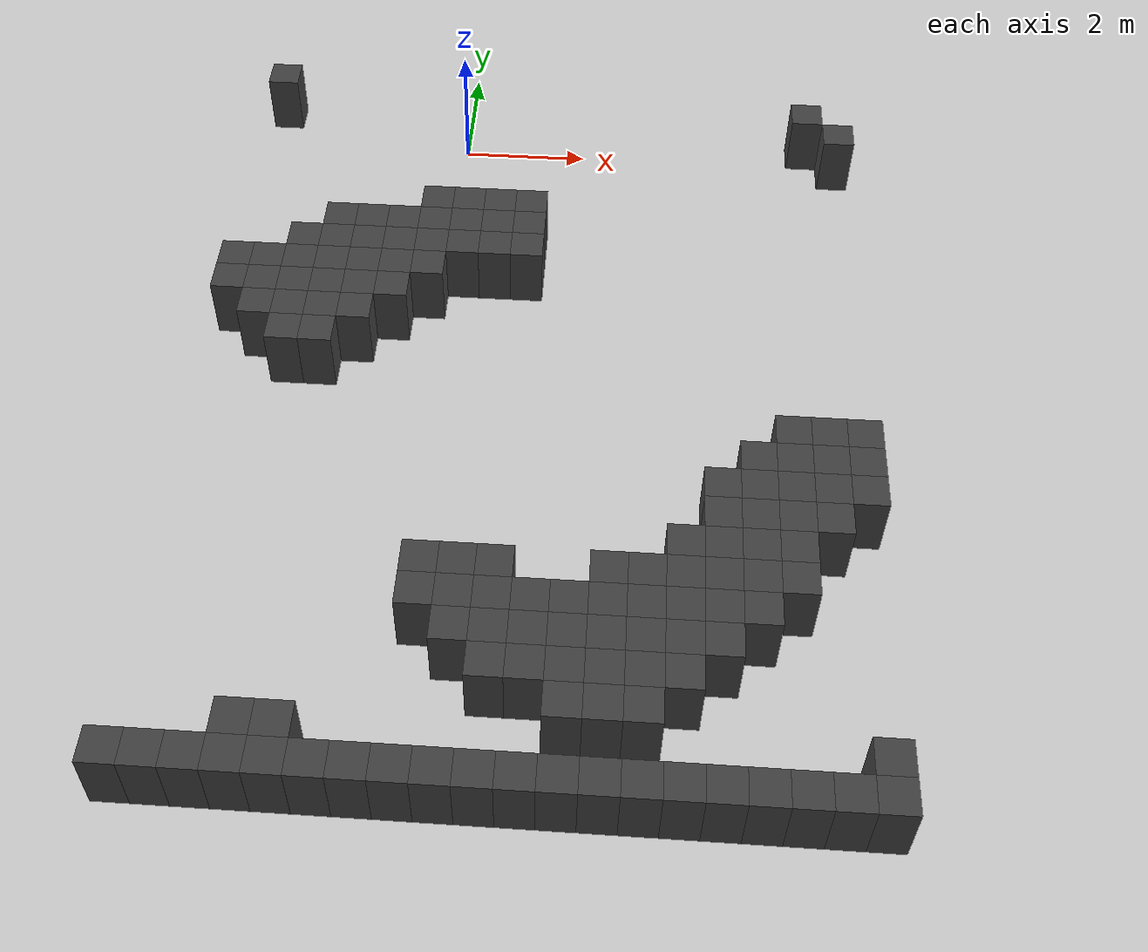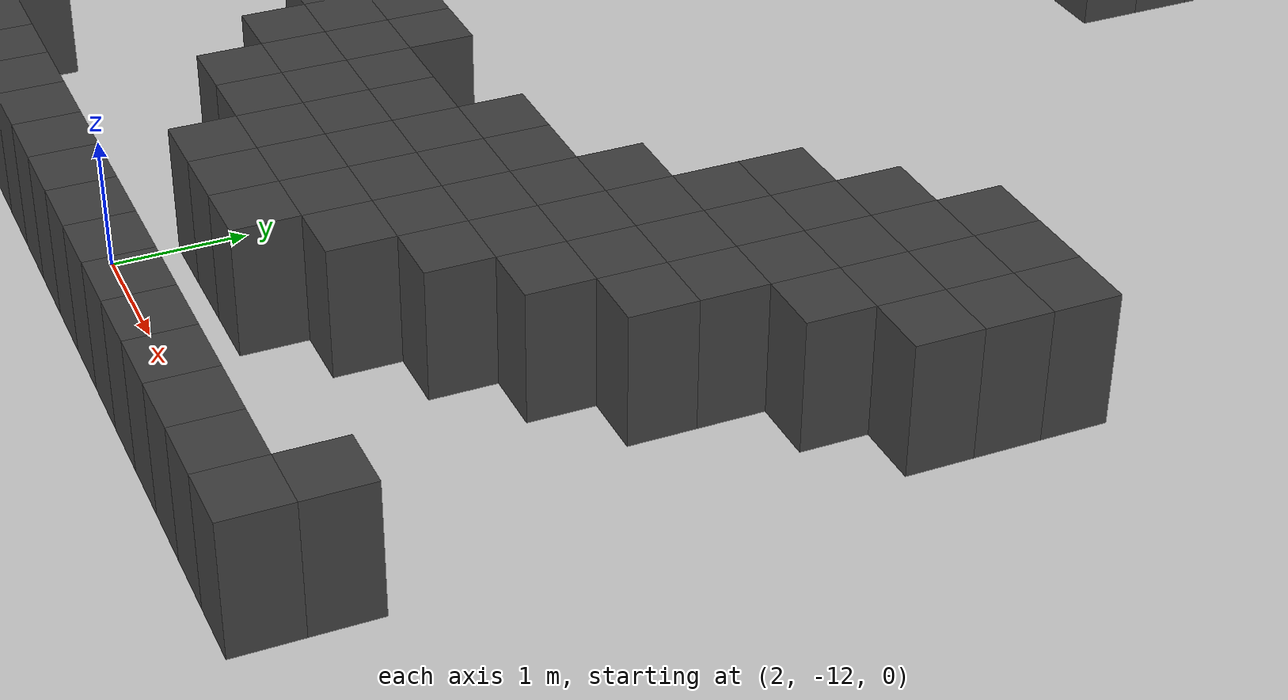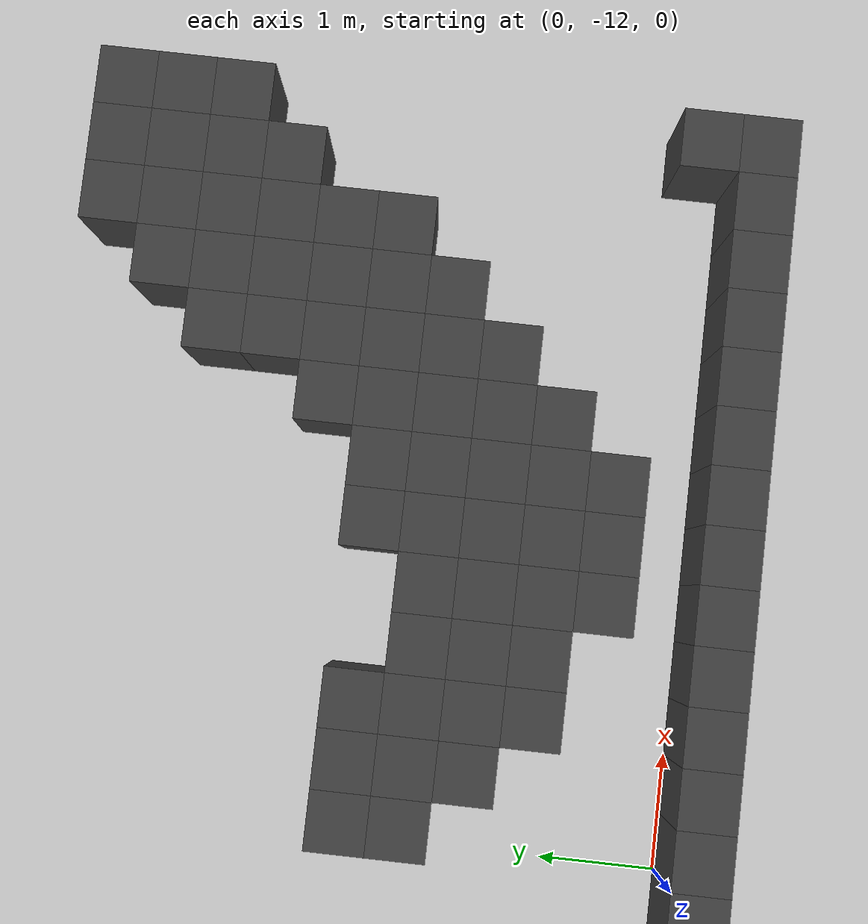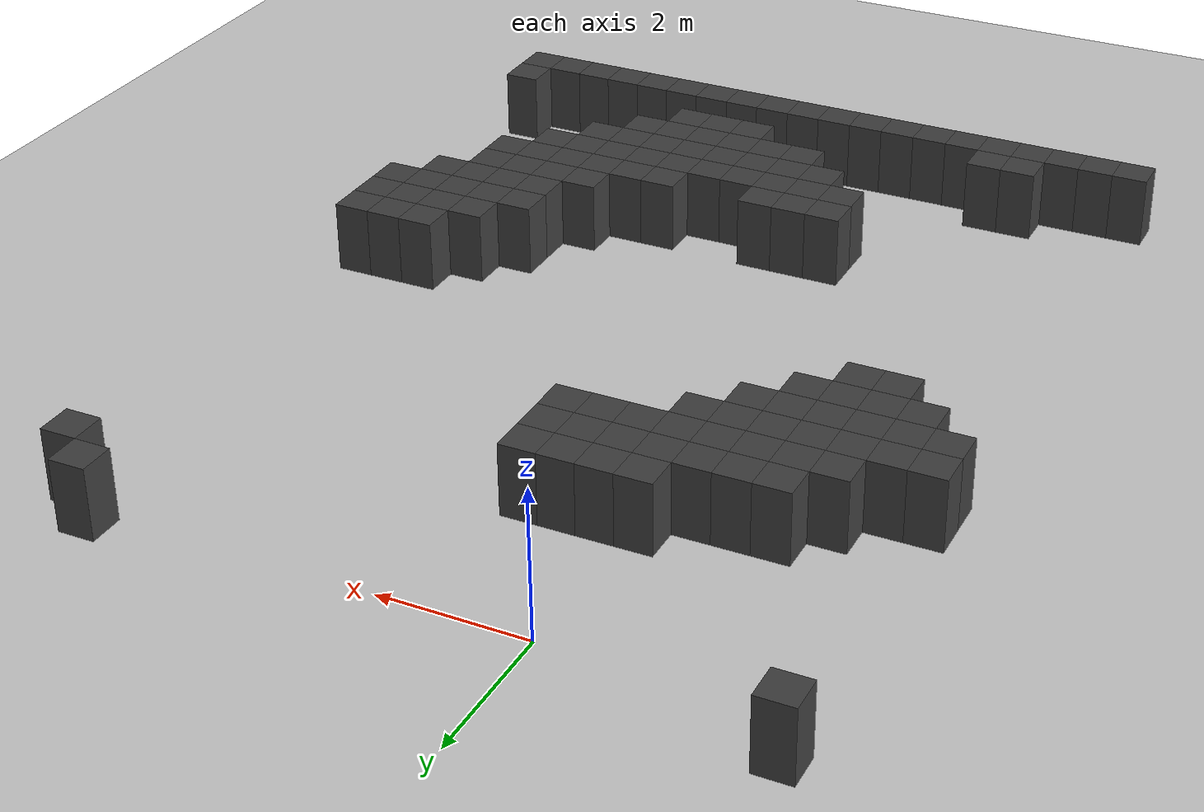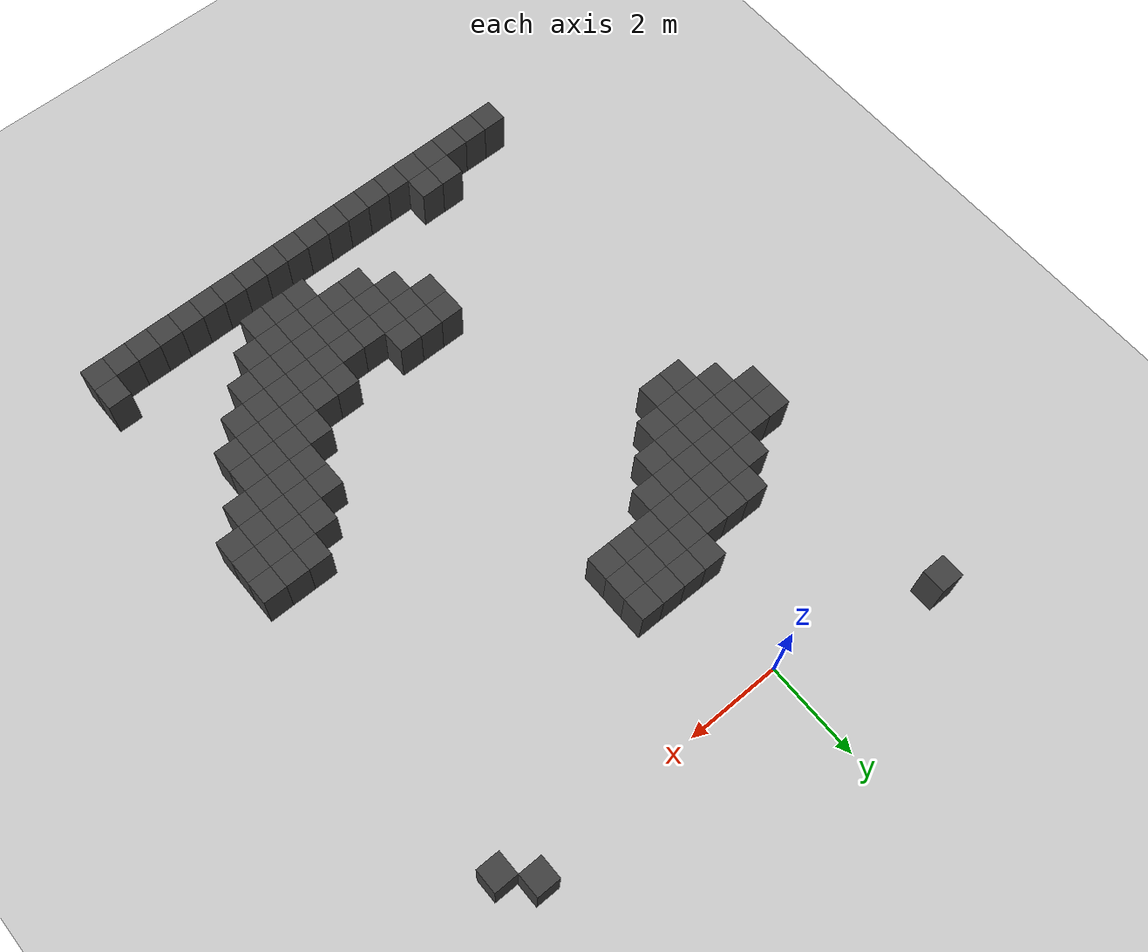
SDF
<sdf version="1.7">
 <world name="map_7372">
  <model name="ground_plane">
   <static>true</static>
   <link name="link">
    <collision name="collision">
     <geometry><plane><normal>0 0 1</normal><size>200 200</size></plane></geometry>
    </collision>
    <visual name="visual">
     <geometry><plane><normal>0 0 1</normal><size>200 200</size></plane></geometry>
     <material><ambient>0.8 0.8 0.8 1</ambient><diffuse>0.8 0.8 0.8 1</diffuse></material>
    </visual>
   </link>
  </model>
  <model name="maze_environment">
   <static>true</static>
   <link name="wall_395">
    <pose>-3.250 0.750 0.500 0 0 0</pose>
    <collision name="col"><geometry><box><size>0.5 0.5 1.0</size></box></geometry></collision>
    <visual name="vis">
     <geometry><box><size>0.5 0.5 1.0</size></box></geometry>
     <material><ambient>0.15 0.15 0.15 1</ambient><diffuse>0.25 0.25 0.25 1</diffuse></material>
    </visual>
   </link>
   <link name="wall_410">
    <pose>5.750 0.250 0.500 0 0 0</pose>
    <collision name="col"><geometry><box><size>0.5 0.5 1.0</size></box></geometry></collision>
    <visual name="vis">
     <geometry><box><size>0.5 0.5 1.0</size></box></geometry>
     <material><ambient>0.15 0.15 0.15 1</ambient><diffuse>0.25 0.25 0.25 1</diffuse></material>
    </visual>
   </link>
   <link name="wall_423">
    <pose>6.250 -0.250 0.500 0 0 0</pose>
    <collision name="col"><geometry><box><size>0.5 0.5 1.0</size></box></geometry></collision>
    <visual name="vis">
     <geometry><box><size>0.5 0.5 1.0</size></box></geometry>
     <material><ambient>0.15 0.15 0.15 1</ambient><diffuse>0.25 0.25 0.25 1</diffuse></material>
    </visual>
   </link>
   <link name="wall_445">
    <pose>-0.250 -2.250 0.500 0 0 0</pose>
    <collision name="col"><geometry><box><size>0.5 0.5 1.0</size></box></geometry></collision>
    <visual name="vis">
     <geometry><box><size>0.5 0.5 1.0</size></box></geometry>
     <material><ambient>0.15 0.15 0.15 1</ambient><diffuse>0.25 0.25 0.25 1</diffuse></material>
    </visual>
   </link>
   <link name="wall_446">
    <pose>0.250 -2.250 0.500 0 0 0</pose>
    <collision name="col"><geometry><box><size>0.5 0.5 1.0</size></box></geometry></collision>
    <visual name="vis">
     <geometry><box><size>0.5 0.5 1.0</size></box></geometry>
     <material><ambient>0.15 0.15 0.15 1</ambient><diffuse>0.25 0.25 0.25 1</diffuse></material>
    </visual>
   </link>
   <link name="wall_447">
    <pose>0.750 -2.250 0.500 0 0 0</pose>
    <collision name="col"><geometry><box><size>0.5 0.5 1.0</size></box></geometry></collision>
    <visual name="vis">
     <geometry><box><size>0.5 0.5 1.0</size></box></geometry>
     <material><ambient>0.15 0.15 0.15 1</ambient><diffuse>0.25 0.25 0.25 1</diffuse></material>
    </visual>
   </link>
   <link name="wall_448">
    <pose>1.250 -2.250 0.500 0 0 0</pose>
    <collision name="col"><geometry><box><size>0.5 0.5 1.0</size></box></geometry></collision>
    <visual name="vis">
     <geometry><box><size>0.5 0.5 1.0</size></box></geometry>
     <material><ambient>0.15 0.15 0.15 1</ambient><diffuse>0.25 0.25 0.25 1</diffuse></material>
    </visual>
   </link>
   <link name="wall_458">
    <pose>-1.750 -2.750 0.500 0 0 0</pose>
    <collision name="col"><geometry><box><size>0.5 0.5 1.0</size></box></geometry></collision>
    <visual name="vis">
     <geometry><box><size>0.5 0.5 1.0</size></box></geometry>
     <material><ambient>0.15 0.15 0.15 1</ambient><diffuse>0.25 0.25 0.25 1</diffuse></material>
    </visual>
   </link>
   <link name="wall_459">
    <pose>-1.250 -2.750 0.500 0 0 0</pose>
    <collision name="col"><geometry><box><size>0.5 0.5 1.0</size></box></geometry></collision>
    <visual name="vis">
     <geometry><box><size>0.5 0.5 1.0</size></box></geometry>
     <material><ambient>0.15 0.15 0.15 1</ambient><diffuse>0.25 0.25 0.25 1</diffuse></material>
    </visual>
   </link>
   <link name="wall_460">
    <pose>-0.750 -2.750 0.500 0 0 0</pose>
    <collision name="col"><geometry><box><size>0.5 0.5 1.0</size></box></geometry></collision>
    <visual name="vis">
     <geometry><box><size>0.5 0.5 1.0</size></box></geometry>
     <material><ambient>0.15 0.15 0.15 1</ambient><diffuse>0.25 0.25 0.25 1</diffuse></material>
    </visual>
   </link>
   <link name="wall_461">
    <pose>-0.250 -2.750 0.500 0 0 0</pose>
    <collision name="col"><geometry><box><size>0.5 0.5 1.0</size></box></geometry></collision>
    <visual name="vis">
     <geometry><box><size>0.5 0.5 1.0</size></box></geometry>
     <material><ambient>0.15 0.15 0.15 1</ambient><diffuse>0.25 0.25 0.25 1</diffuse></material>
    </visual>
   </link>
   <link name="wall_462">
    <pose>0.250 -2.750 0.500 0 0 0</pose>
    <collision name="col"><geometry><box><size>0.5 0.5 1.0</size></box></geometry></collision>
    <visual name="vis">
     <geometry><box><size>0.5 0.5 1.0</size></box></geometry>
     <material><ambient>0.15 0.15 0.15 1</ambient><diffuse>0.25 0.25 0.25 1</diffuse></material>
    </visual>
   </link>
   <link name="wall_463">
    <pose>0.750 -2.750 0.500 0 0 0</pose>
    <collision name="col"><geometry><box><size>0.5 0.5 1.0</size></box></geometry></collision>
    <visual name="vis">
     <geometry><box><size>0.5 0.5 1.0</size></box></geometry>
     <material><ambient>0.15 0.15 0.15 1</ambient><diffuse>0.25 0.25 0.25 1</diffuse></material>
    </visual>
   </link>
   <link name="wall_464">
    <pose>1.250 -2.750 0.500 0 0 0</pose>
    <collision name="col"><geometry><box><size>0.5 0.5 1.0</size></box></geometry></collision>
    <visual name="vis">
     <geometry><box><size>0.5 0.5 1.0</size></box></geometry>
     <material><ambient>0.15 0.15 0.15 1</ambient><diffuse>0.25 0.25 0.25 1</diffuse></material>
    </visual>
   </link>
   <link name="wall_481">
    <pose>-2.250 -3.250 0.500 0 0 0</pose>
    <collision name="col"><geometry><box><size>0.5 0.5 1.0</size></box></geometry></collision>
    <visual name="vis">
     <geometry><box><size>0.5 0.5 1.0</size></box></geometry>
     <material><ambient>0.15 0.15 0.15 1</ambient><diffuse>0.25 0.25 0.25 1</diffuse></material>
    </visual>
   </link>
   <link name="wall_482">
    <pose>-1.750 -3.250 0.500 0 0 0</pose>
    <collision name="col"><geometry><box><size>0.5 0.5 1.0</size></box></geometry></collision>
    <visual name="vis">
     <geometry><box><size>0.5 0.5 1.0</size></box></geometry>
     <material><ambient>0.15 0.15 0.15 1</ambient><diffuse>0.25 0.25 0.25 1</diffuse></material>
    </visual>
   </link>
   <link name="wall_483">
    <pose>-1.250 -3.250 0.500 0 0 0</pose>
    <collision name="col"><geometry><box><size>0.5 0.5 1.0</size></box></geometry></collision>
    <visual name="vis">
     <geometry><box><size>0.5 0.5 1.0</size></box></geometry>
     <material><ambient>0.15 0.15 0.15 1</ambient><diffuse>0.25 0.25 0.25 1</diffuse></material>
    </visual>
   </link>
   <link name="wall_484">
    <pose>-0.750 -3.250 0.500 0 0 0</pose>
    <collision name="col"><geometry><box><size>0.5 0.5 1.0</size></box></geometry></collision>
    <visual name="vis">
     <geometry><box><size>0.5 0.5 1.0</size></box></geometry>
     <material><ambient>0.15 0.15 0.15 1</ambient><diffuse>0.25 0.25 0.25 1</diffuse></material>
    </visual>
   </link>
   <link name="wall_485">
    <pose>-0.250 -3.250 0.500 0 0 0</pose>
    <collision name="col"><geometry><box><size>0.5 0.5 1.0</size></box></geometry></collision>
    <visual name="vis">
     <geometry><box><size>0.5 0.5 1.0</size></box></geometry>
     <material><ambient>0.15 0.15 0.15 1</ambient><diffuse>0.25 0.25 0.25 1</diffuse></material>
    </visual>
   </link>
   <link name="wall_486">
    <pose>0.250 -3.250 0.500 0 0 0</pose>
    <collision name="col"><geometry><box><size>0.5 0.5 1.0</size></box></geometry></collision>
    <visual name="vis">
     <geometry><box><size>0.5 0.5 1.0</size></box></geometry>
     <material><ambient>0.15 0.15 0.15 1</ambient><diffuse>0.25 0.25 0.25 1</diffuse></material>
    </visual>
   </link>
   <link name="wall_487">
    <pose>0.750 -3.250 0.500 0 0 0</pose>
    <collision name="col"><geometry><box><size>0.5 0.5 1.0</size></box></geometry></collision>
    <visual name="vis">
     <geometry><box><size>0.5 0.5 1.0</size></box></geometry>
     <material><ambient>0.15 0.15 0.15 1</ambient><diffuse>0.25 0.25 0.25 1</diffuse></material>
    </visual>
   </link>
   <link name="wall_488">
    <pose>1.250 -3.250 0.500 0 0 0</pose>
    <collision name="col"><geometry><box><size>0.5 0.5 1.0</size></box></geometry></collision>
    <visual name="vis">
     <geometry><box><size>0.5 0.5 1.0</size></box></geometry>
     <material><ambient>0.15 0.15 0.15 1</ambient><diffuse>0.25 0.25 0.25 1</diffuse></material>
    </visual>
   </link>
   <link name="wall_508">
    <pose>-3.250 -3.750 0.500 0 0 0</pose>
    <collision name="col"><geometry><box><size>0.5 0.5 1.0</size></box></geometry></collision>
    <visual name="vis">
     <geometry><box><size>0.5 0.5 1.0</size></box></geometry>
     <material><ambient>0.15 0.15 0.15 1</ambient><diffuse>0.25 0.25 0.25 1</diffuse></material>
    </visual>
   </link>
   <link name="wall_509">
    <pose>-2.750 -3.750 0.500 0 0 0</pose>
    <collision name="col"><geometry><box><size>0.5 0.5 1.0</size></box></geometry></collision>
    <visual name="vis">
     <geometry><box><size>0.5 0.5 1.0</size></box></geometry>
     <material><ambient>0.15 0.15 0.15 1</ambient><diffuse>0.25 0.25 0.25 1</diffuse></material>
    </visual>
   </link>
   <link name="wall_510">
    <pose>-2.250 -3.750 0.500 0 0 0</pose>
    <collision name="col"><geometry><box><size>0.5 0.5 1.0</size></box></geometry></collision>
    <visual name="vis">
     <geometry><box><size>0.5 0.5 1.0</size></box></geometry>
     <material><ambient>0.15 0.15 0.15 1</ambient><diffuse>0.25 0.25 0.25 1</diffuse></material>
    </visual>
   </link>
   <link name="wall_511">
    <pose>-1.750 -3.750 0.500 0 0 0</pose>
    <collision name="col"><geometry><box><size>0.5 0.5 1.0</size></box></geometry></collision>
    <visual name="vis">
     <geometry><box><size>0.5 0.5 1.0</size></box></geometry>
     <material><ambient>0.15 0.15 0.15 1</ambient><diffuse>0.25 0.25 0.25 1</diffuse></material>
    </visual>
   </link>
   <link name="wall_512">
    <pose>-1.250 -3.750 0.500 0 0 0</pose>
    <collision name="col"><geometry><box><size>0.5 0.5 1.0</size></box></geometry></collision>
    <visual name="vis">
     <geometry><box><size>0.5 0.5 1.0</size></box></geometry>
     <material><ambient>0.15 0.15 0.15 1</ambient><diffuse>0.25 0.25 0.25 1</diffuse></material>
    </visual>
   </link>
   <link name="wall_513">
    <pose>-0.750 -3.750 0.500 0 0 0</pose>
    <collision name="col"><geometry><box><size>0.5 0.5 1.0</size></box></geometry></collision>
    <visual name="vis">
     <geometry><box><size>0.5 0.5 1.0</size></box></geometry>
     <material><ambient>0.15 0.15 0.15 1</ambient><diffuse>0.25 0.25 0.25 1</diffuse></material>
    </visual>
   </link>
   <link name="wall_514">
    <pose>-0.250 -3.750 0.500 0 0 0</pose>
    <collision name="col"><geometry><box><size>0.5 0.5 1.0</size></box></geometry></collision>
    <visual name="vis">
     <geometry><box><size>0.5 0.5 1.0</size></box></geometry>
     <material><ambient>0.15 0.15 0.15 1</ambient><diffuse>0.25 0.25 0.25 1</diffuse></material>
    </visual>
   </link>
   <link name="wall_533">
    <pose>-3.250 -4.250 0.500 0 0 0</pose>
    <collision name="col"><geometry><box><size>0.5 0.5 1.0</size></box></geometry></collision>
    <visual name="vis">
     <geometry><box><size>0.5 0.5 1.0</size></box></geometry>
     <material><ambient>0.15 0.15 0.15 1</ambient><diffuse>0.25 0.25 0.25 1</diffuse></material>
    </visual>
   </link>
   <link name="wall_534">
    <pose>-2.750 -4.250 0.500 0 0 0</pose>
    <collision name="col"><geometry><box><size>0.5 0.5 1.0</size></box></geometry></collision>
    <visual name="vis">
     <geometry><box><size>0.5 0.5 1.0</size></box></geometry>
     <material><ambient>0.15 0.15 0.15 1</ambient><diffuse>0.25 0.25 0.25 1</diffuse></material>
    </visual>
   </link>
   <link name="wall_535">
    <pose>-2.250 -4.250 0.500 0 0 0</pose>
    <collision name="col"><geometry><box><size>0.5 0.5 1.0</size></box></geometry></collision>
    <visual name="vis">
     <geometry><box><size>0.5 0.5 1.0</size></box></geometry>
     <material><ambient>0.15 0.15 0.15 1</ambient><diffuse>0.25 0.25 0.25 1</diffuse></material>
    </visual>
   </link>
   <link name="wall_536">
    <pose>-1.750 -4.250 0.500 0 0 0</pose>
    <collision name="col"><geometry><box><size>0.5 0.5 1.0</size></box></geometry></collision>
    <visual name="vis">
     <geometry><box><size>0.5 0.5 1.0</size></box></geometry>
     <material><ambient>0.15 0.15 0.15 1</ambient><diffuse>0.25 0.25 0.25 1</diffuse></material>
    </visual>
   </link>
   <link name="wall_537">
    <pose>-1.250 -4.250 0.500 0 0 0</pose>
    <collision name="col"><geometry><box><size>0.5 0.5 1.0</size></box></geometry></collision>
    <visual name="vis">
     <geometry><box><size>0.5 0.5 1.0</size></box></geometry>
     <material><ambient>0.15 0.15 0.15 1</ambient><diffuse>0.25 0.25 0.25 1</diffuse></material>
    </visual>
   </link>
   <link name="wall_538">
    <pose>-0.750 -4.250 0.500 0 0 0</pose>
    <collision name="col"><geometry><box><size>0.5 0.5 1.0</size></box></geometry></collision>
    <visual name="vis">
     <geometry><box><size>0.5 0.5 1.0</size></box></geometry>
     <material><ambient>0.15 0.15 0.15 1</ambient><diffuse>0.25 0.25 0.25 1</diffuse></material>
    </visual>
   </link>
   <link name="wall_553">
    <pose>-2.750 -4.750 0.500 0 0 0</pose>
    <collision name="col"><geometry><box><size>0.5 0.5 1.0</size></box></geometry></collision>
    <visual name="vis">
     <geometry><box><size>0.5 0.5 1.0</size></box></geometry>
     <material><ambient>0.15 0.15 0.15 1</ambient><diffuse>0.25 0.25 0.25 1</diffuse></material>
    </visual>
   </link>
   <link name="wall_554">
    <pose>-2.250 -4.750 0.500 0 0 0</pose>
    <collision name="col"><geometry><box><size>0.5 0.5 1.0</size></box></geometry></collision>
    <visual name="vis">
     <geometry><box><size>0.5 0.5 1.0</size></box></geometry>
     <material><ambient>0.15 0.15 0.15 1</ambient><diffuse>0.25 0.25 0.25 1</diffuse></material>
    </visual>
   </link>
   <link name="wall_555">
    <pose>-1.750 -4.750 0.500 0 0 0</pose>
    <collision name="col"><geometry><box><size>0.5 0.5 1.0</size></box></geometry></collision>
    <visual name="vis">
     <geometry><box><size>0.5 0.5 1.0</size></box></geometry>
     <material><ambient>0.15 0.15 0.15 1</ambient><diffuse>0.25 0.25 0.25 1</diffuse></material>
    </visual>
   </link>
   <link name="wall_556">
    <pose>-1.250 -4.750 0.500 0 0 0</pose>
    <collision name="col"><geometry><box><size>0.5 0.5 1.0</size></box></geometry></collision>
    <visual name="vis">
     <geometry><box><size>0.5 0.5 1.0</size></box></geometry>
     <material><ambient>0.15 0.15 0.15 1</ambient><diffuse>0.25 0.25 0.25 1</diffuse></material>
    </visual>
   </link>
   <link name="wall_567">
    <pose>-2.250 -5.250 0.500 0 0 0</pose>
    <collision name="col"><geometry><box><size>0.5 0.5 1.0</size></box></geometry></collision>
    <visual name="vis">
     <geometry><box><size>0.5 0.5 1.0</size></box></geometry>
     <material><ambient>0.15 0.15 0.15 1</ambient><diffuse>0.25 0.25 0.25 1</diffuse></material>
    </visual>
   </link>
   <link name="wall_568">
    <pose>-1.750 -5.250 0.500 0 0 0</pose>
    <collision name="col"><geometry><box><size>0.5 0.5 1.0</size></box></geometry></collision>
    <visual name="vis">
     <geometry><box><size>0.5 0.5 1.0</size></box></geometry>
     <material><ambient>0.15 0.15 0.15 1</ambient><diffuse>0.25 0.25 0.25 1</diffuse></material>
    </visual>
   </link>
   <link name="wall_593">
    <pose>5.250 -6.750 0.500 0 0 0</pose>
    <collision name="col"><geometry><box><size>0.5 0.5 1.0</size></box></geometry></collision>
    <visual name="vis">
     <geometry><box><size>0.5 0.5 1.0</size></box></geometry>
     <material><ambient>0.15 0.15 0.15 1</ambient><diffuse>0.25 0.25 0.25 1</diffuse></material>
    </visual>
   </link>
   <link name="wall_594">
    <pose>5.750 -6.750 0.500 0 0 0</pose>
    <collision name="col"><geometry><box><size>0.5 0.5 1.0</size></box></geometry></collision>
    <visual name="vis">
     <geometry><box><size>0.5 0.5 1.0</size></box></geometry>
     <material><ambient>0.15 0.15 0.15 1</ambient><diffuse>0.25 0.25 0.25 1</diffuse></material>
    </visual>
   </link>
   <link name="wall_595">
    <pose>6.250 -6.750 0.500 0 0 0</pose>
    <collision name="col"><geometry><box><size>0.5 0.5 1.0</size></box></geometry></collision>
    <visual name="vis">
     <geometry><box><size>0.5 0.5 1.0</size></box></geometry>
     <material><ambient>0.15 0.15 0.15 1</ambient><diffuse>0.25 0.25 0.25 1</diffuse></material>
    </visual>
   </link>
   <link name="wall_608">
    <pose>4.750 -7.250 0.500 0 0 0</pose>
    <collision name="col"><geometry><box><size>0.5 0.5 1.0</size></box></geometry></collision>
    <visual name="vis">
     <geometry><box><size>0.5 0.5 1.0</size></box></geometry>
     <material><ambient>0.15 0.15 0.15 1</ambient><diffuse>0.25 0.25 0.25 1</diffuse></material>
    </visual>
   </link>
   <link name="wall_609">
    <pose>5.250 -7.250 0.500 0 0 0</pose>
    <collision name="col"><geometry><box><size>0.5 0.5 1.0</size></box></geometry></collision>
    <visual name="vis">
     <geometry><box><size>0.5 0.5 1.0</size></box></geometry>
     <material><ambient>0.15 0.15 0.15 1</ambient><diffuse>0.25 0.25 0.25 1</diffuse></material>
    </visual>
   </link>
   <link name="wall_610">
    <pose>5.750 -7.250 0.500 0 0 0</pose>
    <collision name="col"><geometry><box><size>0.5 0.5 1.0</size></box></geometry></collision>
    <visual name="vis">
     <geometry><box><size>0.5 0.5 1.0</size></box></geometry>
     <material><ambient>0.15 0.15 0.15 1</ambient><diffuse>0.25 0.25 0.25 1</diffuse></material>
    </visual>
   </link>
   <link name="wall_611">
    <pose>6.250 -7.250 0.500 0 0 0</pose>
    <collision name="col"><geometry><box><size>0.5 0.5 1.0</size></box></geometry></collision>
    <visual name="vis">
     <geometry><box><size>0.5 0.5 1.0</size></box></geometry>
     <material><ambient>0.15 0.15 0.15 1</ambient><diffuse>0.25 0.25 0.25 1</diffuse></material>
    </visual>
   </link>
   <link name="wall_624">
    <pose>4.250 -7.750 0.500 0 0 0</pose>
    <collision name="col"><geometry><box><size>0.5 0.5 1.0</size></box></geometry></collision>
    <visual name="vis">
     <geometry><box><size>0.5 0.5 1.0</size></box></geometry>
     <material><ambient>0.15 0.15 0.15 1</ambient><diffuse>0.25 0.25 0.25 1</diffuse></material>
    </visual>
   </link>
   <link name="wall_625">
    <pose>4.750 -7.750 0.500 0 0 0</pose>
    <collision name="col"><geometry><box><size>0.5 0.5 1.0</size></box></geometry></collision>
    <visual name="vis">
     <geometry><box><size>0.5 0.5 1.0</size></box></geometry>
     <material><ambient>0.15 0.15 0.15 1</ambient><diffuse>0.25 0.25 0.25 1</diffuse></material>
    </visual>
   </link>
   <link name="wall_626">
    <pose>5.250 -7.750 0.500 0 0 0</pose>
    <collision name="col"><geometry><box><size>0.5 0.5 1.0</size></box></geometry></collision>
    <visual name="vis">
     <geometry><box><size>0.5 0.5 1.0</size></box></geometry>
     <material><ambient>0.15 0.15 0.15 1</ambient><diffuse>0.25 0.25 0.25 1</diffuse></material>
    </visual>
   </link>
   <link name="wall_627">
    <pose>5.750 -7.750 0.500 0 0 0</pose>
    <collision name="col"><geometry><box><size>0.5 0.5 1.0</size></box></geometry></collision>
    <visual name="vis">
     <geometry><box><size>0.5 0.5 1.0</size></box></geometry>
     <material><ambient>0.15 0.15 0.15 1</ambient><diffuse>0.25 0.25 0.25 1</diffuse></material>
    </visual>
   </link>
   <link name="wall_628">
    <pose>6.250 -7.750 0.500 0 0 0</pose>
    <collision name="col"><geometry><box><size>0.5 0.5 1.0</size></box></geometry></collision>
    <visual name="vis">
     <geometry><box><size>0.5 0.5 1.0</size></box></geometry>
     <material><ambient>0.15 0.15 0.15 1</ambient><diffuse>0.25 0.25 0.25 1</diffuse></material>
    </visual>
   </link>
   <link name="wall_642">
    <pose>4.250 -8.250 0.500 0 0 0</pose>
    <collision name="col"><geometry><box><size>0.5 0.5 1.0</size></box></geometry></collision>
    <visual name="vis">
     <geometry><box><size>0.5 0.5 1.0</size></box></geometry>
     <material><ambient>0.15 0.15 0.15 1</ambient><diffuse>0.25 0.25 0.25 1</diffuse></material>
    </visual>
   </link>
   <link name="wall_643">
    <pose>4.750 -8.250 0.500 0 0 0</pose>
    <collision name="col"><geometry><box><size>0.5 0.5 1.0</size></box></geometry></collision>
    <visual name="vis">
     <geometry><box><size>0.5 0.5 1.0</size></box></geometry>
     <material><ambient>0.15 0.15 0.15 1</ambient><diffuse>0.25 0.25 0.25 1</diffuse></material>
    </visual>
   </link>
   <link name="wall_644">
    <pose>5.250 -8.250 0.500 0 0 0</pose>
    <collision name="col"><geometry><box><size>0.5 0.5 1.0</size></box></geometry></collision>
    <visual name="vis">
     <geometry><box><size>0.5 0.5 1.0</size></box></geometry>
     <material><ambient>0.15 0.15 0.15 1</ambient><diffuse>0.25 0.25 0.25 1</diffuse></material>
    </visual>
   </link>
   <link name="wall_645">
    <pose>5.750 -8.250 0.500 0 0 0</pose>
    <collision name="col"><geometry><box><size>0.5 0.5 1.0</size></box></geometry></collision>
    <visual name="vis">
     <geometry><box><size>0.5 0.5 1.0</size></box></geometry>
     <material><ambient>0.15 0.15 0.15 1</ambient><diffuse>0.25 0.25 0.25 1</diffuse></material>
    </visual>
   </link>
   <link name="wall_659">
    <pose>3.750 -8.750 0.500 0 0 0</pose>
    <collision name="col"><geometry><box><size>0.5 0.5 1.0</size></box></geometry></collision>
    <visual name="vis">
     <geometry><box><size>0.5 0.5 1.0</size></box></geometry>
     <material><ambient>0.15 0.15 0.15 1</ambient><diffuse>0.25 0.25 0.25 1</diffuse></material>
    </visual>
   </link>
   <link name="wall_660">
    <pose>4.250 -8.750 0.500 0 0 0</pose>
    <collision name="col"><geometry><box><size>0.5 0.5 1.0</size></box></geometry></collision>
    <visual name="vis">
     <geometry><box><size>0.5 0.5 1.0</size></box></geometry>
     <material><ambient>0.15 0.15 0.15 1</ambient><diffuse>0.25 0.25 0.25 1</diffuse></material>
    </visual>
   </link>
   <link name="wall_661">
    <pose>4.750 -8.750 0.500 0 0 0</pose>
    <collision name="col"><geometry><box><size>0.5 0.5 1.0</size></box></geometry></collision>
    <visual name="vis">
     <geometry><box><size>0.5 0.5 1.0</size></box></geometry>
     <material><ambient>0.15 0.15 0.15 1</ambient><diffuse>0.25 0.25 0.25 1</diffuse></material>
    </visual>
   </link>
   <link name="wall_662">
    <pose>5.250 -8.750 0.500 0 0 0</pose>
    <collision name="col"><geometry><box><size>0.5 0.5 1.0</size></box></geometry></collision>
    <visual name="vis">
     <geometry><box><size>0.5 0.5 1.0</size></box></geometry>
     <material><ambient>0.15 0.15 0.15 1</ambient><diffuse>0.25 0.25 0.25 1</diffuse></material>
    </visual>
   </link>
   <link name="wall_677">
    <pose>0.250 -9.250 0.500 0 0 0</pose>
    <collision name="col"><geometry><box><size>0.5 0.5 1.0</size></box></geometry></collision>
    <visual name="vis">
     <geometry><box><size>0.5 0.5 1.0</size></box></geometry>
     <material><ambient>0.15 0.15 0.15 1</ambient><diffuse>0.25 0.25 0.25 1</diffuse></material>
    </visual>
   </link>
   <link name="wall_678">
    <pose>0.750 -9.250 0.500 0 0 0</pose>
    <collision name="col"><geometry><box><size>0.5 0.5 1.0</size></box></geometry></collision>
    <visual name="vis">
     <geometry><box><size>0.5 0.5 1.0</size></box></geometry>
     <material><ambient>0.15 0.15 0.15 1</ambient><diffuse>0.25 0.25 0.25 1</diffuse></material>
    </visual>
   </link>
   <link name="wall_679">
    <pose>1.250 -9.250 0.500 0 0 0</pose>
    <collision name="col"><geometry><box><size>0.5 0.5 1.0</size></box></geometry></collision>
    <visual name="vis">
     <geometry><box><size>0.5 0.5 1.0</size></box></geometry>
     <material><ambient>0.15 0.15 0.15 1</ambient><diffuse>0.25 0.25 0.25 1</diffuse></material>
    </visual>
   </link>
   <link name="wall_680">
    <pose>2.750 -9.250 0.500 0 0 0</pose>
    <collision name="col"><geometry><box><size>0.5 0.5 1.0</size></box></geometry></collision>
    <visual name="vis">
     <geometry><box><size>0.5 0.5 1.0</size></box></geometry>
     <material><ambient>0.15 0.15 0.15 1</ambient><diffuse>0.25 0.25 0.25 1</diffuse></material>
    </visual>
   </link>
   <link name="wall_681">
    <pose>3.250 -9.250 0.500 0 0 0</pose>
    <collision name="col"><geometry><box><size>0.5 0.5 1.0</size></box></geometry></collision>
    <visual name="vis">
     <geometry><box><size>0.5 0.5 1.0</size></box></geometry>
     <material><ambient>0.15 0.15 0.15 1</ambient><diffuse>0.25 0.25 0.25 1</diffuse></material>
    </visual>
   </link>
   <link name="wall_682">
    <pose>3.750 -9.250 0.500 0 0 0</pose>
    <collision name="col"><geometry><box><size>0.5 0.5 1.0</size></box></geometry></collision>
    <visual name="vis">
     <geometry><box><size>0.5 0.5 1.0</size></box></geometry>
     <material><ambient>0.15 0.15 0.15 1</ambient><diffuse>0.25 0.25 0.25 1</diffuse></material>
    </visual>
   </link>
   <link name="wall_683">
    <pose>4.250 -9.250 0.500 0 0 0</pose>
    <collision name="col"><geometry><box><size>0.5 0.5 1.0</size></box></geometry></collision>
    <visual name="vis">
     <geometry><box><size>0.5 0.5 1.0</size></box></geometry>
     <material><ambient>0.15 0.15 0.15 1</ambient><diffuse>0.25 0.25 0.25 1</diffuse></material>
    </visual>
   </link>
   <link name="wall_684">
    <pose>4.750 -9.250 0.500 0 0 0</pose>
    <collision name="col"><geometry><box><size>0.5 0.5 1.0</size></box></geometry></collision>
    <visual name="vis">
     <geometry><box><size>0.5 0.5 1.0</size></box></geometry>
     <material><ambient>0.15 0.15 0.15 1</ambient><diffuse>0.25 0.25 0.25 1</diffuse></material>
    </visual>
   </link>
   <link name="wall_685">
    <pose>5.250 -9.250 0.500 0 0 0</pose>
    <collision name="col"><geometry><box><size>0.5 0.5 1.0</size></box></geometry></collision>
    <visual name="vis">
     <geometry><box><size>0.5 0.5 1.0</size></box></geometry>
     <material><ambient>0.15 0.15 0.15 1</ambient><diffuse>0.25 0.25 0.25 1</diffuse></material>
    </visual>
   </link>
   <link name="wall_697">
    <pose>0.250 -9.750 0.500 0 0 0</pose>
    <collision name="col"><geometry><box><size>0.5 0.5 1.0</size></box></geometry></collision>
    <visual name="vis">
     <geometry><box><size>0.5 0.5 1.0</size></box></geometry>
     <material><ambient>0.15 0.15 0.15 1</ambient><diffuse>0.25 0.25 0.25 1</diffuse></material>
    </visual>
   </link>
   <link name="wall_698">
    <pose>0.750 -9.750 0.500 0 0 0</pose>
    <collision name="col"><geometry><box><size>0.5 0.5 1.0</size></box></geometry></collision>
    <visual name="vis">
     <geometry><box><size>0.5 0.5 1.0</size></box></geometry>
     <material><ambient>0.15 0.15 0.15 1</ambient><diffuse>0.25 0.25 0.25 1</diffuse></material>
    </visual>
   </link>
   <link name="wall_699">
    <pose>1.250 -9.750 0.500 0 0 0</pose>
    <collision name="col"><geometry><box><size>0.5 0.5 1.0</size></box></geometry></collision>
    <visual name="vis">
     <geometry><box><size>0.5 0.5 1.0</size></box></geometry>
     <material><ambient>0.15 0.15 0.15 1</ambient><diffuse>0.25 0.25 0.25 1</diffuse></material>
    </visual>
   </link>
   <link name="wall_700">
    <pose>1.750 -9.750 0.500 0 0 0</pose>
    <collision name="col"><geometry><box><size>0.5 0.5 1.0</size></box></geometry></collision>
    <visual name="vis">
     <geometry><box><size>0.5 0.5 1.0</size></box></geometry>
     <material><ambient>0.15 0.15 0.15 1</ambient><diffuse>0.25 0.25 0.25 1</diffuse></material>
    </visual>
   </link>
   <link name="wall_701">
    <pose>2.250 -9.750 0.500 0 0 0</pose>
    <collision name="col"><geometry><box><size>0.5 0.5 1.0</size></box></geometry></collision>
    <visual name="vis">
     <geometry><box><size>0.5 0.5 1.0</size></box></geometry>
     <material><ambient>0.15 0.15 0.15 1</ambient><diffuse>0.25 0.25 0.25 1</diffuse></material>
    </visual>
   </link>
   <link name="wall_702">
    <pose>2.750 -9.750 0.500 0 0 0</pose>
    <collision name="col"><geometry><box><size>0.5 0.5 1.0</size></box></geometry></collision>
    <visual name="vis">
     <geometry><box><size>0.5 0.5 1.0</size></box></geometry>
     <material><ambient>0.15 0.15 0.15 1</ambient><diffuse>0.25 0.25 0.25 1</diffuse></material>
    </visual>
   </link>
   <link name="wall_703">
    <pose>3.250 -9.750 0.500 0 0 0</pose>
    <collision name="col"><geometry><box><size>0.5 0.5 1.0</size></box></geometry></collision>
    <visual name="vis">
     <geometry><box><size>0.5 0.5 1.0</size></box></geometry>
     <material><ambient>0.15 0.15 0.15 1</ambient><diffuse>0.25 0.25 0.25 1</diffuse></material>
    </visual>
   </link>
   <link name="wall_704">
    <pose>3.750 -9.750 0.500 0 0 0</pose>
    <collision name="col"><geometry><box><size>0.5 0.5 1.0</size></box></geometry></collision>
    <visual name="vis">
     <geometry><box><size>0.5 0.5 1.0</size></box></geometry>
     <material><ambient>0.15 0.15 0.15 1</ambient><diffuse>0.25 0.25 0.25 1</diffuse></material>
    </visual>
   </link>
   <link name="wall_705">
    <pose>4.250 -9.750 0.500 0 0 0</pose>
    <collision name="col"><geometry><box><size>0.5 0.5 1.0</size></box></geometry></collision>
    <visual name="vis">
     <geometry><box><size>0.5 0.5 1.0</size></box></geometry>
     <material><ambient>0.15 0.15 0.15 1</ambient><diffuse>0.25 0.25 0.25 1</diffuse></material>
    </visual>
   </link>
   <link name="wall_706">
    <pose>4.750 -9.750 0.500 0 0 0</pose>
    <collision name="col"><geometry><box><size>0.5 0.5 1.0</size></box></geometry></collision>
    <visual name="vis">
     <geometry><box><size>0.5 0.5 1.0</size></box></geometry>
     <material><ambient>0.15 0.15 0.15 1</ambient><diffuse>0.25 0.25 0.25 1</diffuse></material>
    </visual>
   </link>
   <link name="wall_717">
    <pose>0.750 -10.250 0.500 0 0 0</pose>
    <collision name="col"><geometry><box><size>0.5 0.5 1.0</size></box></geometry></collision>
    <visual name="vis">
     <geometry><box><size>0.5 0.5 1.0</size></box></geometry>
     <material><ambient>0.15 0.15 0.15 1</ambient><diffuse>0.25 0.25 0.25 1</diffuse></material>
    </visual>
   </link>
   <link name="wall_718">
    <pose>1.250 -10.250 0.500 0 0 0</pose>
    <collision name="col"><geometry><box><size>0.5 0.5 1.0</size></box></geometry></collision>
    <visual name="vis">
     <geometry><box><size>0.5 0.5 1.0</size></box></geometry>
     <material><ambient>0.15 0.15 0.15 1</ambient><diffuse>0.25 0.25 0.25 1</diffuse></material>
    </visual>
   </link>
   <link name="wall_719">
    <pose>1.750 -10.250 0.500 0 0 0</pose>
    <collision name="col"><geometry><box><size>0.5 0.5 1.0</size></box></geometry></collision>
    <visual name="vis">
     <geometry><box><size>0.5 0.5 1.0</size></box></geometry>
     <material><ambient>0.15 0.15 0.15 1</ambient><diffuse>0.25 0.25 0.25 1</diffuse></material>
    </visual>
   </link>
   <link name="wall_720">
    <pose>2.250 -10.250 0.500 0 0 0</pose>
    <collision name="col"><geometry><box><size>0.5 0.5 1.0</size></box></geometry></collision>
    <visual name="vis">
     <geometry><box><size>0.5 0.5 1.0</size></box></geometry>
     <material><ambient>0.15 0.15 0.15 1</ambient><diffuse>0.25 0.25 0.25 1</diffuse></material>
    </visual>
   </link>
   <link name="wall_721">
    <pose>2.750 -10.250 0.500 0 0 0</pose>
    <collision name="col"><geometry><box><size>0.5 0.5 1.0</size></box></geometry></collision>
    <visual name="vis">
     <geometry><box><size>0.5 0.5 1.0</size></box></geometry>
     <material><ambient>0.15 0.15 0.15 1</ambient><diffuse>0.25 0.25 0.25 1</diffuse></material>
    </visual>
   </link>
   <link name="wall_722">
    <pose>3.250 -10.250 0.500 0 0 0</pose>
    <collision name="col"><geometry><box><size>0.5 0.5 1.0</size></box></geometry></collision>
    <visual name="vis">
     <geometry><box><size>0.5 0.5 1.0</size></box></geometry>
     <material><ambient>0.15 0.15 0.15 1</ambient><diffuse>0.25 0.25 0.25 1</diffuse></material>
    </visual>
   </link>
   <link name="wall_723">
    <pose>3.750 -10.250 0.500 0 0 0</pose>
    <collision name="col"><geometry><box><size>0.5 0.5 1.0</size></box></geometry></collision>
    <visual name="vis">
     <geometry><box><size>0.5 0.5 1.0</size></box></geometry>
     <material><ambient>0.15 0.15 0.15 1</ambient><diffuse>0.25 0.25 0.25 1</diffuse></material>
    </visual>
   </link>
   <link name="wall_724">
    <pose>4.250 -10.250 0.500 0 0 0</pose>
    <collision name="col"><geometry><box><size>0.5 0.5 1.0</size></box></geometry></collision>
    <visual name="vis">
     <geometry><box><size>0.5 0.5 1.0</size></box></geometry>
     <material><ambient>0.15 0.15 0.15 1</ambient><diffuse>0.25 0.25 0.25 1</diffuse></material>
    </visual>
   </link>
   <link name="wall_738">
    <pose>1.250 -10.750 0.500 0 0 0</pose>
    <collision name="col"><geometry><box><size>0.5 0.5 1.0</size></box></geometry></collision>
    <visual name="vis">
     <geometry><box><size>0.5 0.5 1.0</size></box></geometry>
     <material><ambient>0.15 0.15 0.15 1</ambient><diffuse>0.25 0.25 0.25 1</diffuse></material>
    </visual>
   </link>
   <link name="wall_739">
    <pose>1.750 -10.750 0.500 0 0 0</pose>
    <collision name="col"><geometry><box><size>0.5 0.5 1.0</size></box></geometry></collision>
    <visual name="vis">
     <geometry><box><size>0.5 0.5 1.0</size></box></geometry>
     <material><ambient>0.15 0.15 0.15 1</ambient><diffuse>0.25 0.25 0.25 1</diffuse></material>
    </visual>
   </link>
   <link name="wall_740">
    <pose>2.250 -10.750 0.500 0 0 0</pose>
    <collision name="col"><geometry><box><size>0.5 0.5 1.0</size></box></geometry></collision>
    <visual name="vis">
     <geometry><box><size>0.5 0.5 1.0</size></box></geometry>
     <material><ambient>0.15 0.15 0.15 1</ambient><diffuse>0.25 0.25 0.25 1</diffuse></material>
    </visual>
   </link>
   <link name="wall_741">
    <pose>2.750 -10.750 0.500 0 0 0</pose>
    <collision name="col"><geometry><box><size>0.5 0.5 1.0</size></box></geometry></collision>
    <visual name="vis">
     <geometry><box><size>0.5 0.5 1.0</size></box></geometry>
     <material><ambient>0.15 0.15 0.15 1</ambient><diffuse>0.25 0.25 0.25 1</diffuse></material>
    </visual>
   </link>
   <link name="wall_742">
    <pose>3.250 -10.750 0.500 0 0 0</pose>
    <collision name="col"><geometry><box><size>0.5 0.5 1.0</size></box></geometry></collision>
    <visual name="vis">
     <geometry><box><size>0.5 0.5 1.0</size></box></geometry>
     <material><ambient>0.15 0.15 0.15 1</ambient><diffuse>0.25 0.25 0.25 1</diffuse></material>
    </visual>
   </link>
   <link name="wall_743">
    <pose>3.750 -10.750 0.500 0 0 0</pose>
    <collision name="col"><geometry><box><size>0.5 0.5 1.0</size></box></geometry></collision>
    <visual name="vis">
     <geometry><box><size>0.5 0.5 1.0</size></box></geometry>
     <material><ambient>0.15 0.15 0.15 1</ambient><diffuse>0.25 0.25 0.25 1</diffuse></material>
    </visual>
   </link>
   <link name="wall_757">
    <pose>2.250 -11.250 0.500 0 0 0</pose>
    <collision name="col"><geometry><box><size>0.5 0.5 1.0</size></box></geometry></collision>
    <visual name="vis">
     <geometry><box><size>0.5 0.5 1.0</size></box></geometry>
     <material><ambient>0.15 0.15 0.15 1</ambient><diffuse>0.25 0.25 0.25 1</diffuse></material>
    </visual>
   </link>
   <link name="wall_758">
    <pose>2.750 -11.250 0.500 0 0 0</pose>
    <collision name="col"><geometry><box><size>0.5 0.5 1.0</size></box></geometry></collision>
    <visual name="vis">
     <geometry><box><size>0.5 0.5 1.0</size></box></geometry>
     <material><ambient>0.15 0.15 0.15 1</ambient><diffuse>0.25 0.25 0.25 1</diffuse></material>
    </visual>
   </link>
   <link name="wall_759">
    <pose>3.250 -11.250 0.500 0 0 0</pose>
    <collision name="col"><geometry><box><size>0.5 0.5 1.0</size></box></geometry></collision>
    <visual name="vis">
     <geometry><box><size>0.5 0.5 1.0</size></box></geometry>
     <material><ambient>0.15 0.15 0.15 1</ambient><diffuse>0.25 0.25 0.25 1</diffuse></material>
    </visual>
   </link>
   <link name="wall_778">
    <pose>-1.750 -11.750 0.500 0 0 0</pose>
    <collision name="col"><geometry><box><size>0.5 0.5 1.0</size></box></geometry></collision>
    <visual name="vis">
     <geometry><box><size>0.5 0.5 1.0</size></box></geometry>
     <material><ambient>0.15 0.15 0.15 1</ambient><diffuse>0.25 0.25 0.25 1</diffuse></material>
    </visual>
   </link>
   <link name="wall_779">
    <pose>-1.250 -11.750 0.500 0 0 0</pose>
    <collision name="col"><geometry><box><size>0.5 0.5 1.0</size></box></geometry></collision>
    <visual name="vis">
     <geometry><box><size>0.5 0.5 1.0</size></box></geometry>
     <material><ambient>0.15 0.15 0.15 1</ambient><diffuse>0.25 0.25 0.25 1</diffuse></material>
    </visual>
   </link>
   <link name="wall_780">
    <pose>6.250 -11.750 0.500 0 0 0</pose>
    <collision name="col"><geometry><box><size>0.5 0.5 1.0</size></box></geometry></collision>
    <visual name="vis">
     <geometry><box><size>0.5 0.5 1.0</size></box></geometry>
     <material><ambient>0.15 0.15 0.15 1</ambient><diffuse>0.25 0.25 0.25 1</diffuse></material>
    </visual>
   </link>
   <link name="wall_807">
    <pose>-3.250 -12.250 0.500 0 0 0</pose>
    <collision name="col"><geometry><box><size>0.5 0.5 1.0</size></box></geometry></collision>
    <visual name="vis">
     <geometry><box><size>0.5 0.5 1.0</size></box></geometry>
     <material><ambient>0.15 0.15 0.15 1</ambient><diffuse>0.25 0.25 0.25 1</diffuse></material>
    </visual>
   </link>
   <link name="wall_808">
    <pose>-2.750 -12.250 0.500 0 0 0</pose>
    <collision name="col"><geometry><box><size>0.5 0.5 1.0</size></box></geometry></collision>
    <visual name="vis">
     <geometry><box><size>0.5 0.5 1.0</size></box></geometry>
     <material><ambient>0.15 0.15 0.15 1</ambient><diffuse>0.25 0.25 0.25 1</diffuse></material>
    </visual>
   </link>
   <link name="wall_809">
    <pose>-2.250 -12.250 0.500 0 0 0</pose>
    <collision name="col"><geometry><box><size>0.5 0.5 1.0</size></box></geometry></collision>
    <visual name="vis">
     <geometry><box><size>0.5 0.5 1.0</size></box></geometry>
     <material><ambient>0.15 0.15 0.15 1</ambient><diffuse>0.25 0.25 0.25 1</diffuse></material>
    </visual>
   </link>
   <link name="wall_810">
    <pose>-1.750 -12.250 0.500 0 0 0</pose>
    <collision name="col"><geometry><box><size>0.5 0.5 1.0</size></box></geometry></collision>
    <visual name="vis">
     <geometry><box><size>0.5 0.5 1.0</size></box></geometry>
     <material><ambient>0.15 0.15 0.15 1</ambient><diffuse>0.25 0.25 0.25 1</diffuse></material>
    </visual>
   </link>
   <link name="wall_811">
    <pose>-1.250 -12.250 0.500 0 0 0</pose>
    <collision name="col"><geometry><box><size>0.5 0.5 1.0</size></box></geometry></collision>
    <visual name="vis">
     <geometry><box><size>0.5 0.5 1.0</size></box></geometry>
     <material><ambient>0.15 0.15 0.15 1</ambient><diffuse>0.25 0.25 0.25 1</diffuse></material>
    </visual>
   </link>
   <link name="wall_812">
    <pose>-0.750 -12.250 0.500 0 0 0</pose>
    <collision name="col"><geometry><box><size>0.5 0.5 1.0</size></box></geometry></collision>
    <visual name="vis">
     <geometry><box><size>0.5 0.5 1.0</size></box></geometry>
     <material><ambient>0.15 0.15 0.15 1</ambient><diffuse>0.25 0.25 0.25 1</diffuse></material>
    </visual>
   </link>
   <link name="wall_813">
    <pose>-0.250 -12.250 0.500 0 0 0</pose>
    <collision name="col"><geometry><box><size>0.5 0.5 1.0</size></box></geometry></collision>
    <visual name="vis">
     <geometry><box><size>0.5 0.5 1.0</size></box></geometry>
     <material><ambient>0.15 0.15 0.15 1</ambient><diffuse>0.25 0.25 0.25 1</diffuse></material>
    </visual>
   </link>
   <link name="wall_814">
    <pose>0.250 -12.250 0.500 0 0 0</pose>
    <collision name="col"><geometry><box><size>0.5 0.5 1.0</size></box></geometry></collision>
    <visual name="vis">
     <geometry><box><size>0.5 0.5 1.0</size></box></geometry>
     <material><ambient>0.15 0.15 0.15 1</ambient><diffuse>0.25 0.25 0.25 1</diffuse></material>
    </visual>
   </link>
   <link name="wall_815">
    <pose>0.750 -12.250 0.500 0 0 0</pose>
    <collision name="col"><geometry><box><size>0.5 0.5 1.0</size></box></geometry></collision>
    <visual name="vis">
     <geometry><box><size>0.5 0.5 1.0</size></box></geometry>
     <material><ambient>0.15 0.15 0.15 1</ambient><diffuse>0.25 0.25 0.25 1</diffuse></material>
    </visual>
   </link>
   <link name="wall_816">
    <pose>1.250 -12.250 0.500 0 0 0</pose>
    <collision name="col"><geometry><box><size>0.5 0.5 1.0</size></box></geometry></collision>
    <visual name="vis">
     <geometry><box><size>0.5 0.5 1.0</size></box></geometry>
     <material><ambient>0.15 0.15 0.15 1</ambient><diffuse>0.25 0.25 0.25 1</diffuse></material>
    </visual>
   </link>
   <link name="wall_817">
    <pose>1.750 -12.250 0.500 0 0 0</pose>
    <collision name="col"><geometry><box><size>0.5 0.5 1.0</size></box></geometry></collision>
    <visual name="vis">
     <geometry><box><size>0.5 0.5 1.0</size></box></geometry>
     <material><ambient>0.15 0.15 0.15 1</ambient><diffuse>0.25 0.25 0.25 1</diffuse></material>
    </visual>
   </link>
   <link name="wall_818">
    <pose>2.250 -12.250 0.500 0 0 0</pose>
    <collision name="col"><geometry><box><size>0.5 0.5 1.0</size></box></geometry></collision>
    <visual name="vis">
     <geometry><box><size>0.5 0.5 1.0</size></box></geometry>
     <material><ambient>0.15 0.15 0.15 1</ambient><diffuse>0.25 0.25 0.25 1</diffuse></material>
    </visual>
   </link>
   <link name="wall_819">
    <pose>2.750 -12.250 0.500 0 0 0</pose>
    <collision name="col"><geometry><box><size>0.5 0.5 1.0</size></box></geometry></collision>
    <visual name="vis">
     <geometry><box><size>0.5 0.5 1.0</size></box></geometry>
     <material><ambient>0.15 0.15 0.15 1</ambient><diffuse>0.25 0.25 0.25 1</diffuse></material>
    </visual>
   </link>
   <link name="wall_820">
    <pose>3.250 -12.250 0.500 0 0 0</pose>
    <collision name="col"><geometry><box><size>0.5 0.5 1.0</size></box></geometry></collision>
    <visual name="vis">
     <geometry><box><size>0.5 0.5 1.0</size></box></geometry>
     <material><ambient>0.15 0.15 0.15 1</ambient><diffuse>0.25 0.25 0.25 1</diffuse></material>
    </visual>
   </link>
   <link name="wall_821">
    <pose>3.750 -12.250 0.500 0 0 0</pose>
    <collision name="col"><geometry><box><size>0.5 0.5 1.0</size></box></geometry></collision>
    <visual name="vis">
     <geometry><box><size>0.5 0.5 1.0</size></box></geometry>
     <material><ambient>0.15 0.15 0.15 1</ambient><diffuse>0.25 0.25 0.25 1</diffuse></material>
    </visual>
   </link>
   <link name="wall_822">
    <pose>4.250 -12.250 0.500 0 0 0</pose>
    <collision name="col"><geometry><box><size>0.5 0.5 1.0</size></box></geometry></collision>
    <visual name="vis">
     <geometry><box><size>0.5 0.5 1.0</size></box></geometry>
     <material><ambient>0.15 0.15 0.15 1</ambient><diffuse>0.25 0.25 0.25 1</diffuse></material>
    </visual>
   </link>
   <link name="wall_823">
    <pose>4.750 -12.250 0.500 0 0 0</pose>
    <collision name="col"><geometry><box><size>0.5 0.5 1.0</size></box></geometry></collision>
    <visual name="vis">
     <geometry><box><size>0.5 0.5 1.0</size></box></geometry>
     <material><ambient>0.15 0.15 0.15 1</ambient><diffuse>0.25 0.25 0.25 1</diffuse></material>
    </visual>
   </link>
   <link name="wall_824">
    <pose>5.250 -12.250 0.500 0 0 0</pose>
    <collision name="col"><geometry><box><size>0.5 0.5 1.0</size></box></geometry></collision>
    <visual name="vis">
     <geometry><box><size>0.5 0.5 1.0</size></box></geometry>
     <material><ambient>0.15 0.15 0.15 1</ambient><diffuse>0.25 0.25 0.25 1</diffuse></material>
    </visual>
   </link>
   <link name="wall_825">
    <pose>5.750 -12.250 0.500 0 0 0</pose>
    <collision name="col"><geometry><box><size>0.5 0.5 1.0</size></box></geometry></collision>
    <visual name="vis">
     <geometry><box><size>0.5 0.5 1.0</size></box></geometry>
     <material><ambient>0.15 0.15 0.15 1</ambient><diffuse>0.25 0.25 0.25 1</diffuse></material>
    </visual>
   </link>
   <link name="wall_826">
    <pose>6.250 -12.250 0.500 0 0 0</pose>
    <collision name="col"><geometry><box><size>0.5 0.5 1.0</size></box></geometry></collision>
    <visual name="vis">
     <geometry><box><size>0.5 0.5 1.0</size></box></geometry>
     <material><ambient>0.15 0.15 0.15 1</ambient><diffuse>0.25 0.25 0.25 1</diffuse></material>
    </visual>
   </link>
  </model>
 </world>
</sdf>
